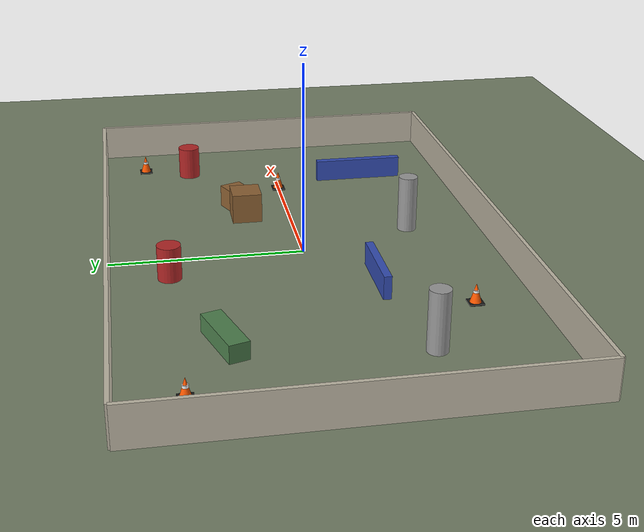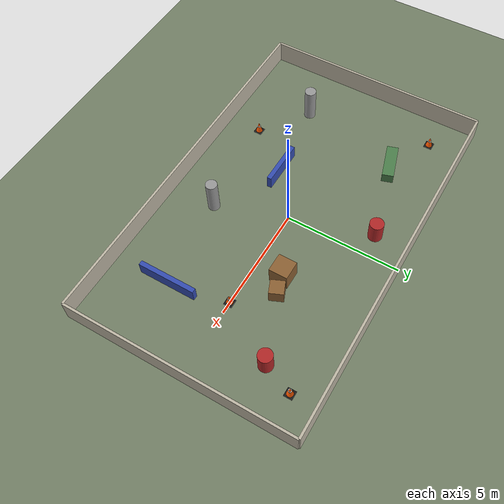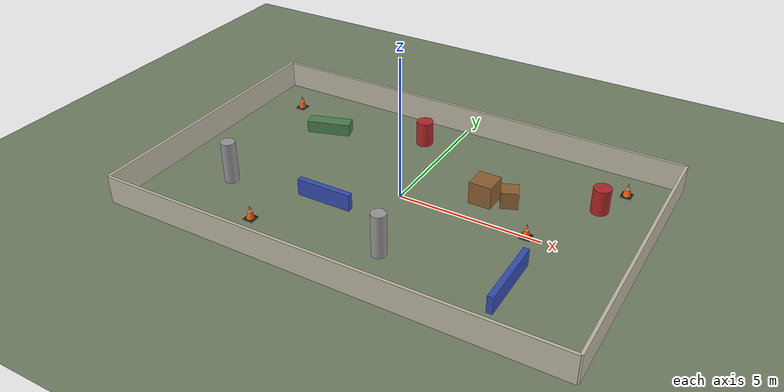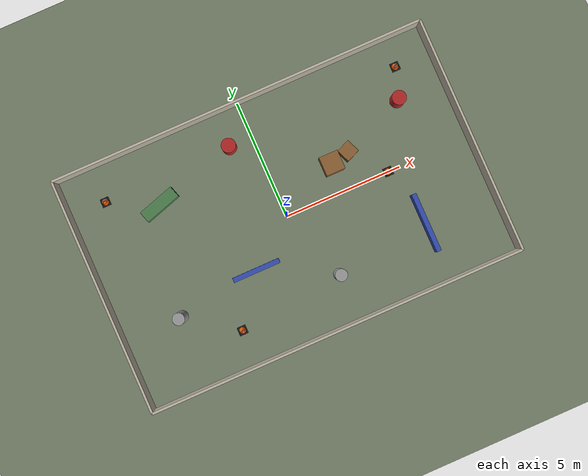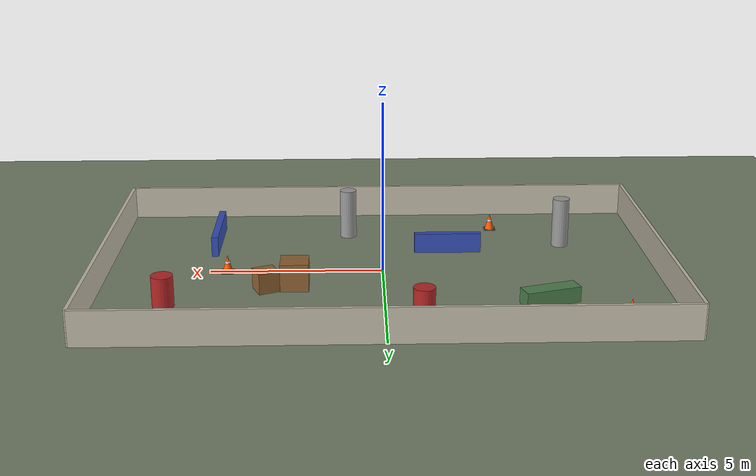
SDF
<sdf version="1.11">
 <world name="quadruped_world">
  <physics name="1ms" type="ode">
   <max_step_size>0.001</max_step_size>
   <real_time_factor>1.0</real_time_factor>
  </physics>
  <plugin filename="gz-sim-physics-system" name="gz::sim::systems::Physics"/>
  <plugin filename="gz-sim-user-commands-system" name="gz::sim::systems::UserCommands"/>
  <plugin filename="gz-sim-scene-broadcaster-system" name="gz::sim::systems::SceneBroadcaster"/>
  <plugin filename="gz-sim-contact-system" name="gz::sim::systems::Contact"/>
  <plugin filename="gz-sim-sensors-system" name="gz::sim::systems::Sensors">
   <render_engine>ogre2</render_engine>
  </plugin>
  <plugin filename="gz-sim-imu-system" name="gz::sim::systems::Imu"/>
  <scene><ambient>0.5 0.5 0.5 1</ambient><background>0.7 0.8 0.95 1</background></scene>
  <light type="directional" name="sun">
   <pose>0 0 10 0 0 0</pose>
   <diffuse>0.8 0.8 0.8 1</diffuse>
   <specular>0.2 0.2 0.2 1</specular>
   <direction>-0.5 0.1 -0.9</direction>
  </light>
  <model name="ground_plane">
   <static>true</static>
   <link name="link">
    <collision name="collision">
     <geometry><plane><normal>0 0 1</normal><size>100 100</size></plane></geometry>
     <surface><friction><ode><mu>1.0</mu><mu2>1.0</mu2></ode></friction></surface>
    </collision>
    <visual name="visual">
     <geometry><plane><normal>0 0 1</normal><size>100 100</size></plane></geometry>
     <material>
      <ambient>0.45 0.5 0.4 1</ambient>
      <diffuse>0.45 0.5 0.4 1</diffuse>
      <specular>0.1 0.1 0.1 1</specular>
     </material>
    </visual>
   </link>
  </model>
  <model name="wall_north">
   <static>true</static>
   <pose>0 5.0 0.5 0 0 0.0</pose>
   <link name="link">
    <collision name="collision"><geometry><box><size>16.0 0.1 1.0</size></box></geometry></collision>
    <visual name="visual">
     <geometry><box><size>16.0 0.1 1.0</size></box></geometry>
     <material><ambient>0.75 0.72 0.65 1</ambient><diffuse>0.75 0.72 0.65 1</diffuse></material>
    </visual>
   </link>
  </model>
  <model name="wall_south">
   <static>true</static>
   <pose>0 -5.0 0.5 0 0 0.0</pose>
   <link name="link">
    <collision name="collision"><geometry><box><size>16.0 0.1 1.0</size></box></geometry></collision>
    <visual name="visual">
     <geometry><box><size>16.0 0.1 1.0</size></box></geometry>
     <material><ambient>0.75 0.72 0.65 1</ambient><diffuse>0.75 0.72 0.65 1</diffuse></material>
    </visual>
   </link>
  </model>
  <model name="wall_east">
   <static>true</static>
   <pose>8.0 0 0.5 0 0 0.0</pose>
   <link name="link">
    <collision name="collision"><geometry><box><size>0.1 10.0 1.0</size></box></geometry></collision>
    <visual name="visual">
     <geometry><box><size>0.1 10.0 1.0</size></box></geometry>
     <material><ambient>0.75 0.72 0.65 1</ambient><diffuse>0.75 0.72 0.65 1</diffuse></material>
    </visual>
   </link>
  </model>
  <model name="wall_west">
   <static>true</static>
   <pose>-8.0 0 0.5 0 0 0.0</pose>
   <link name="link">
    <collision name="collision"><geometry><box><size>0.1 10.0 1.0</size></box></geometry></collision>
    <visual name="visual">
     <geometry><box><size>0.1 10.0 1.0</size></box></geometry>
     <material><ambient>0.75 0.72 0.65 1</ambient><diffuse>0.75 0.72 0.65 1</diffuse></material>
    </visual>
   </link>
  </model>
  <model name="crate_1">
   <static>true</static>
   <pose>2.5 1.2 0.4 0 0 0.0</pose>
   <link name="link">
    <collision name="collision"><geometry><box><size>0.8 0.8 0.8</size></box></geometry></collision>
    <visual name="visual">
     <geometry><box><size>0.8 0.8 0.8</size></box></geometry>
     <material><ambient>0.55 0.38 0.2 1</ambient><diffuse>0.55 0.38 0.2 1</diffuse></material>
    </visual>
   </link>
  </model>
  <model name="crate_2">
   <static>true</static>
   <pose>3.3 1.4 0.3 0 0 0.4</pose>
   <link name="link">
    <collision name="collision"><geometry><box><size>0.6 0.6 0.6</size></box></geometry></collision>
    <visual name="visual">
     <geometry><box><size>0.6 0.6 0.6</size></box></geometry>
     <material><ambient>0.55 0.38 0.2 1</ambient><diffuse>0.55 0.38 0.2 1</diffuse></material>
    </visual>
   </link>
  </model>
  <model name="barrier_1">
   <static>true</static>
   <pose>-2.0 -1.5 0.3 0 0 0.0</pose>
   <link name="link">
    <collision name="collision"><geometry><box><size>2.0 0.2 0.6</size></box></geometry></collision>
    <visual name="visual">
     <geometry><box><size>2.0 0.2 0.6</size></box></geometry>
     <material><ambient>0.2 0.3 0.7 1</ambient><diffuse>0.2 0.3 0.7 1</diffuse></material>
    </visual>
   </link>
  </model>
  <model name="barrier_2">
   <static>true</static>
   <pose>5.0 -2.5 0.3 0 0 0.0</pose>
   <link name="link">
    <collision name="collision"><geometry><box><size>0.2 2.5 0.6</size></box></geometry></collision>
    <visual name="visual">
     <geometry><box><size>0.2 2.5 0.6</size></box></geometry>
     <material><ambient>0.2 0.3 0.7 1</ambient><diffuse>0.2 0.3 0.7 1</diffuse></material>
    </visual>
   </link>
  </model>
  <model name="bench">
   <static>true</static>
   <pose>-4.5 2.5 0.225 0 0 0.3</pose>
   <link name="link">
    <collision name="collision"><geometry><box><size>1.6 0.5 0.45</size></box></geometry></collision>
    <visual name="visual">
     <geometry><box><size>1.6 0.5 0.45</size></box></geometry>
     <material><ambient>0.3 0.5 0.3 1</ambient><diffuse>0.3 0.5 0.3 1</diffuse></material>
    </visual>
   </link>
  </model>
  <model name="pillar_1">
   <static>true</static>
   <pose>1.0 -3.0 0.75 0 0 0</pose>
   <link name="link">
    <collision name="collision">
     <geometry><cylinder><radius>0.25</radius><length>1.5</length></cylinder></geometry>
    </collision>
    <visual name="visual">
     <geometry><cylinder><radius>0.25</radius><length>1.5</length></cylinder></geometry>
     <material><ambient>0.6 0.6 0.6 1</ambient><diffuse>0.6 0.6 0.6 1</diffuse></material>
    </visual>
   </link>
  </model>
  <model name="pillar_2">
   <static>true</static>
   <pose>-5.5 -2.0 0.75 0 0 0</pose>
   <link name="link">
    <collision name="collision">
     <geometry><cylinder><radius>0.25</radius><length>1.5</length></cylinder></geometry>
    </collision>
    <visual name="visual">
     <geometry><cylinder><radius>0.25</radius><length>1.5</length></cylinder></geometry>
     <material><ambient>0.6 0.6 0.6 1</ambient><diffuse>0.6 0.6 0.6 1</diffuse></material>
    </visual>
   </link>
  </model>
  <model name="barrel_1">
   <static>true</static>
   <pose>6.0 2.5 0.45 0 0 0</pose>
   <link name="link">
    <collision name="collision">
     <geometry><cylinder><radius>0.3</radius><length>0.9</length></cylinder></geometry>
    </collision>
    <visual name="visual">
     <geometry><cylinder><radius>0.3</radius><length>0.9</length></cylinder></geometry>
     <material><ambient>0.7 0.15 0.15 1</ambient><diffuse>0.7 0.15 0.15 1</diffuse></material>
    </visual>
   </link>
  </model>
  <model name="barrel_2">
   <static>true</static>
   <pose>-1.0 3.5 0.45 0 0 0</pose>
   <link name="link">
    <collision name="collision">
     <geometry><cylinder><radius>0.3</radius><length>0.9</length></cylinder></geometry>
    </collision>
    <visual name="visual">
     <geometry><cylinder><radius>0.3</radius><length>0.9</length></cylinder></geometry>
     <material><ambient>0.7 0.15 0.15 1</ambient><diffuse>0.7 0.15 0.15 1</diffuse></material>
    </visual>
   </link>
  </model>
  <include><uri>model://traffic_cone</uri><name>cone_1</name><pose>4.5 0.0 0 0 0 0</pose></include>
  <include><uri>model://traffic_cone</uri><name>cone_2</name><pose>6.5 3.8 0 0 0 0</pose></include>
  <include><uri>model://traffic_cone</uri><name>cone_3</name><pose>-3.5 -3.5 0 0 0 0</pose></include>
  <include><uri>model://traffic_cone</uri><name>cone_4</name><pose>-6.5 3.5 0 0 0 0</pose></include>
 </world>
</sdf>

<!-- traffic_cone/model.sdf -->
<sdf version="1.11">
  <model name="traffic_cone">
    <static>true</static>
    <link name="link">
      <collision name="base">
        <pose>0 0 0.015 0 0 0</pose>
        <geometry><box><size>0.36 0.36 0.03</size></box></geometry>
      </collision>
      <collision name="body">
        <pose>0 0 0.265 0 0 0</pose>
        <geometry><cone><radius>0.14</radius><length>0.47</length></cone></geometry>
      </collision>
      <visual name="base">
        <pose>0 0 0.015 0 0 0</pose>
        <geometry><box><size>0.36 0.36 0.03</size></box></geometry>
        <material>
          <ambient>0.1 0.1 0.1 1</ambient>
          <diffuse>0.1 0.1 0.1 1</diffuse>
        </material>
      </visual>
      <visual name="body">
        <pose>0 0 0.265 0 0 0</pose>
        <geometry><cone><radius>0.14</radius><length>0.47</length></cone></geometry>
        <material>
          <ambient>1.0 0.35 0.0 1</ambient>
          <diffuse>1.0 0.35 0.0 1</diffuse>
          <specular>0.3 0.3 0.3 1</specular>
        </material>
      </visual>
      <visual name="band">
        <pose>0 0 0.3 0 0 0</pose>
        <geometry><cylinder><radius>0.069</radius><length>0.07</length></cylinder></geometry>
        <material>
          <ambient>0.95 0.95 0.95 1</ambient>
          <diffuse>0.95 0.95 0.95 1</diffuse>
        </material>
      </visual>
    </link>
  </model>
</sdf>
